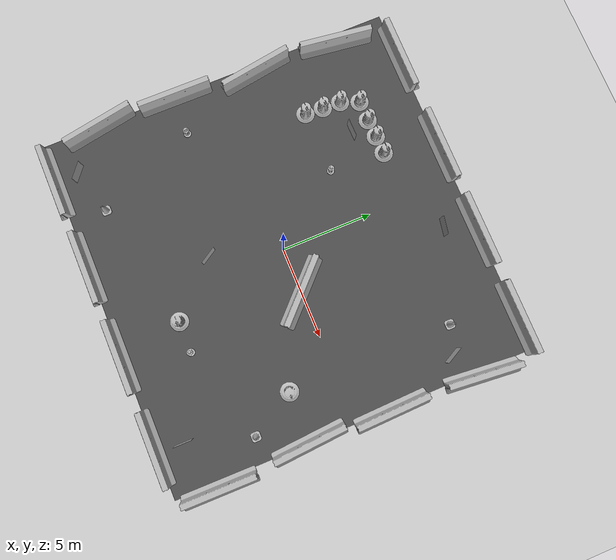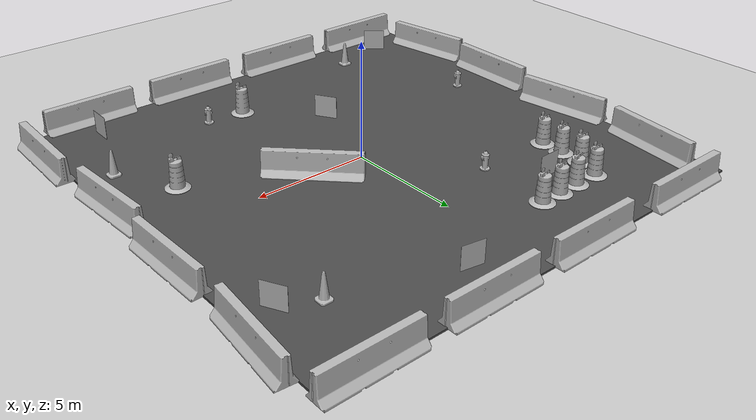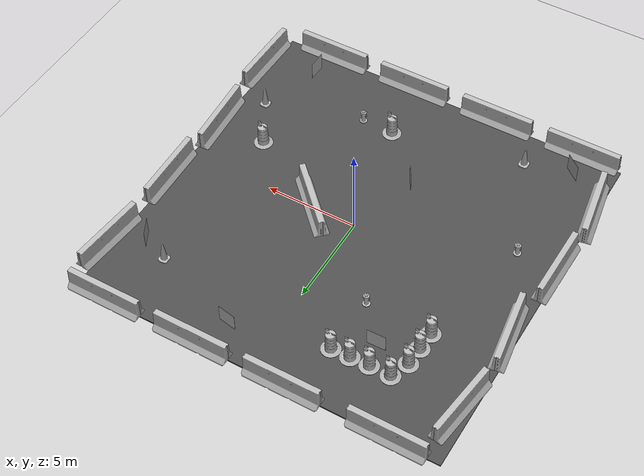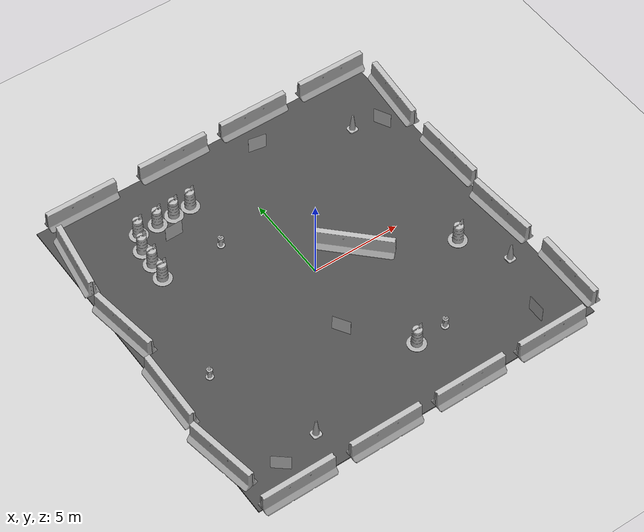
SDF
<sdf version="1.6">
 <world name="default">
  <light name="sun" type="directional">
   <pose>0 0 10 0 -0 0</pose>
   <diffuse>0.8 0.8 0.8 1</diffuse>
   <specular>0.2 0.2 0.2 1</specular>
   <attenuation>
    <range>1000</range>
    <constant>0.9</constant>
    <linear>0.01</linear>
    <quadratic>0.001</quadratic>
   </attenuation>
   <direction>-0.5 0.1 -0.9</direction>
  </light>
  <model name="ground_plane">
   <static>1</static>
   <link name="link">
    <collision name="collision">
     <geometry><plane><normal>0 0 1</normal><size>100 100</size></plane></geometry>
     <surface><friction><ode><mu>100</mu><mu2>50</mu2></ode></friction></surface>
    </collision>
    <visual name="visual">
     <cast_shadows>0</cast_shadows>
     <geometry><plane><normal>0 0 1</normal><size>100 100</size></plane></geometry>
     <material>
      <script><uri>file://media/materials/scripts/gazebo.material</uri><name>Gazebo/Grey</name></script>
     </material>
    </visual>
    <velocity_decay><linear>0</linear><angular>0</angular></velocity_decay>
   </link>
  </model>
  <physics name="default_physics" default="0" type="ode">
   <max_step_size>0.01</max_step_size>
   <real_time_factor>1</real_time_factor>
   <real_time_update_rate>100</real_time_update_rate>
  </physics>
  <scene><ambient>0.4 0.4 0.4 1</ambient><background>0.7 0.7 0.7 1</background><shadows>1</shadows></scene>
  <model name="jersey_barrier">
   <static>1</static>
   <link name="link">
    <visual name="visual">
     <geometry><mesh><uri>model://jersey_barrier/meshes/jersey_barrier.dae</uri></mesh></geometry>
    </visual>
    <collision name="upright">
     <pose>0 0 0.5715 0 -0 0</pose>
     <geometry><box><size>4.06542 0.3063 1.143</size></box></geometry>
    </collision>
    <collision name="base">
     <pose>0 0 0.032258 0 -0 0</pose>
     <geometry><box><size>4.06542 0.8107 0.064516</size></box></geometry>
    </collision>
    <collision name="base2">
     <pose>0 0 0.1 0 -0 0</pose>
     <geometry><box><size>4.06542 0.65 0.1</size></box></geometry>
    </collision>
    <collision name="base3">
     <pose>0 0 0.2 0 -0 0</pose>
     <geometry><box><size>4.06542 0.5 0.1</size></box></geometry>
    </collision>
    <collision name="left-angle">
     <pose>0 -0.224 0.2401 0.9 -0 0</pose>
     <geometry><box><size>4.06542 0.5 0.064516</size></box></geometry>
    </collision>
    <collision name="right-angle">
     <pose>0 0.224 0.2401 -0.9 0 0</pose>
     <geometry><box><size>4.06542 0.5 0.064516</size></box></geometry>
    </collision>
    <velocity_decay><linear>0</linear><angular>0</angular></velocity_decay>
   </link>
   <pose>-8 -10 0 0 -0 0</pose>
  </model>
  <model name="jersey_barrier_0">
   <static>1</static>
   <link name="link">
    <visual name="visual">
     <geometry><mesh><uri>model://jersey_barrier/meshes/jersey_barrier.dae</uri></mesh></geometry>
    </visual>
    <collision name="upright">
     <pose>0 0 0.5715 0 -0 0</pose>
     <geometry><box><size>4.06542 0.3063 1.143</size></box></geometry>
    </collision>
    <collision name="base">
     <pose>0 0 0.032258 0 -0 0</pose>
     <geometry><box><size>4.06542 0.8107 0.064516</size></box></geometry>
    </collision>
    <collision name="base2">
     <pose>0 0 0.1 0 -0 0</pose>
     <geometry><box><size>4.06542 0.65 0.1</size></box></geometry>
    </collision>
    <collision name="base3">
     <pose>0 0 0.2 0 -0 0</pose>
     <geometry><box><size>4.06542 0.5 0.1</size></box></geometry>
    </collision>
    <collision name="left-angle">
     <pose>0 -0.224 0.2401 0.9 -0 0</pose>
     <geometry><box><size>4.06542 0.5 0.064516</size></box></geometry>
    </collision>
    <collision name="right-angle">
     <pose>0 0.224 0.2401 -0.9 0 0</pose>
     <geometry><box><size>4.06542 0.5 0.064516</size></box></geometry>
    </collision>
    <velocity_decay><linear>0</linear><angular>0</angular></velocity_decay>
   </link>
   <pose>-3 -10 0 0 -0 0</pose>
  </model>
  <model name="jersey_barrier_1">
   <static>1</static>
   <link name="link">
    <visual name="visual">
     <geometry><mesh><uri>model://jersey_barrier/meshes/jersey_barrier.dae</uri></mesh></geometry>
    </visual>
    <collision name="upright">
     <pose>0 0 0.5715 0 -0 0</pose>
     <geometry><box><size>4.06542 0.3063 1.143</size></box></geometry>
    </collision>
    <collision name="base">
     <pose>0 0 0.032258 0 -0 0</pose>
     <geometry><box><size>4.06542 0.8107 0.064516</size></box></geometry>
    </collision>
    <collision name="base2">
     <pose>0 0 0.1 0 -0 0</pose>
     <geometry><box><size>4.06542 0.65 0.1</size></box></geometry>
    </collision>
    <collision name="base3">
     <pose>0 0 0.2 0 -0 0</pose>
     <geometry><box><size>4.06542 0.5 0.1</size></box></geometry>
    </collision>
    <collision name="left-angle">
     <pose>0 -0.224 0.2401 0.9 -0 0</pose>
     <geometry><box><size>4.06542 0.5 0.064516</size></box></geometry>
    </collision>
    <collision name="right-angle">
     <pose>0 0.224 0.2401 -0.9 0 0</pose>
     <geometry><box><size>4.06542 0.5 0.064516</size></box></geometry>
    </collision>
    <velocity_decay><linear>0</linear><angular>0</angular></velocity_decay>
   </link>
   <pose>2 -10 0 0 -0 0</pose>
  </model>
  <model name="jersey_barrier_2">
   <static>1</static>
   <link name="link">
    <visual name="visual">
     <geometry><mesh><uri>model://jersey_barrier/meshes/jersey_barrier.dae</uri></mesh></geometry>
    </visual>
    <collision name="upright">
     <pose>0 0 0.5715 0 -0 0</pose>
     <geometry><box><size>4.06542 0.3063 1.143</size></box></geometry>
    </collision>
    <collision name="base">
     <pose>0 0 0.032258 0 -0 0</pose>
     <geometry><box><size>4.06542 0.8107 0.064516</size></box></geometry>
    </collision>
    <collision name="base2">
     <pose>0 0 0.1 0 -0 0</pose>
     <geometry><box><size>4.06542 0.65 0.1</size></box></geometry>
    </collision>
    <collision name="base3">
     <pose>0 0 0.2 0 -0 0</pose>
     <geometry><box><size>4.06542 0.5 0.1</size></box></geometry>
    </collision>
    <collision name="left-angle">
     <pose>0 -0.224 0.2401 0.9 -0 0</pose>
     <geometry><box><size>4.06542 0.5 0.064516</size></box></geometry>
    </collision>
    <collision name="right-angle">
     <pose>0 0.224 0.2401 -0.9 0 0</pose>
     <geometry><box><size>4.06542 0.5 0.064516</size></box></geometry>
    </collision>
    <velocity_decay><linear>0</linear><angular>0</angular></velocity_decay>
   </link>
   <pose>7 -10 0 0 -0 0</pose>
  </model>
  <model name="jersey_barrier_3">
   <static>1</static>
   <link name="link">
    <visual name="visual">
     <geometry><mesh><uri>model://jersey_barrier/meshes/jersey_barrier.dae</uri></mesh></geometry>
    </visual>
    <collision name="upright">
     <pose>0 0 0.5715 0 -0 0</pose>
     <geometry><box><size>4.06542 0.3063 1.143</size></box></geometry>
    </collision>
    <collision name="base">
     <pose>0 0 0.032258 0 -0 0</pose>
     <geometry><box><size>4.06542 0.8107 0.064516</size></box></geometry>
    </collision>
    <collision name="base2">
     <pose>0 0 0.1 0 -0 0</pose>
     <geometry><box><size>4.06542 0.65 0.1</size></box></geometry>
    </collision>
    <collision name="base3">
     <pose>0 0 0.2 0 -0 0</pose>
     <geometry><box><size>4.06542 0.5 0.1</size></box></geometry>
    </collision>
    <collision name="left-angle">
     <pose>0 -0.224 0.2401 0.9 -0 0</pose>
     <geometry><box><size>4.06542 0.5 0.064516</size></box></geometry>
    </collision>
    <collision name="right-angle">
     <pose>0 0.224 0.2401 -0.9 0 0</pose>
     <geometry><box><size>4.06542 0.5 0.064516</size></box></geometry>
    </collision>
    <velocity_decay><linear>0</linear><angular>0</angular></velocity_decay>
   </link>
   <pose>-7.50675 10 0 0 -0 0</pose>
  </model>
  <model name="jersey_barrier_4">
   <static>1</static>
   <link name="link">
    <visual name="visual">
     <geometry><mesh><uri>model://jersey_barrier/meshes/jersey_barrier.dae</uri></mesh></geometry>
    </visual>
    <collision name="upright">
     <pose>0 0 0.5715 0 -0 0</pose>
     <geometry><box><size>4.06542 0.3063 1.143</size></box></geometry>
    </collision>
    <collision name="base">
     <pose>0 0 0.032258 0 -0 0</pose>
     <geometry><box><size>4.06542 0.8107 0.064516</size></box></geometry>
    </collision>
    <collision name="base2">
     <pose>0 0 0.1 0 -0 0</pose>
     <geometry><box><size>4.06542 0.65 0.1</size></box></geometry>
    </collision>
    <collision name="base3">
     <pose>0 0 0.2 0 -0 0</pose>
     <geometry><box><size>4.06542 0.5 0.1</size></box></geometry>
    </collision>
    <collision name="left-angle">
     <pose>0 -0.224 0.2401 0.9 -0 0</pose>
     <geometry><box><size>4.06542 0.5 0.064516</size></box></geometry>
    </collision>
    <collision name="right-angle">
     <pose>0 0.224 0.2401 -0.9 0 0</pose>
     <geometry><box><size>4.06542 0.5 0.064516</size></box></geometry>
    </collision>
    <velocity_decay><linear>0</linear><angular>0</angular></velocity_decay>
   </link>
   <pose>-2 10 0 0 -0 0</pose>
  </model>
  <model name="jersey_barrier_5">
   <static>1</static>
   <link name="link">
    <visual name="visual">
     <geometry><mesh><uri>model://jersey_barrier/meshes/jersey_barrier.dae</uri></mesh></geometry>
    </visual>
    <collision name="upright">
     <pose>0 0 0.5715 0 -0 0</pose>
     <geometry><box><size>4.06542 0.3063 1.143</size></box></geometry>
    </collision>
    <collision name="base">
     <pose>0 0 0.032258 0 -0 0</pose>
     <geometry><box><size>4.06542 0.8107 0.064516</size></box></geometry>
    </collision>
    <collision name="base2">
     <pose>0 0 0.1 0 -0 0</pose>
     <geometry><box><size>4.06542 0.65 0.1</size></box></geometry>
    </collision>
    <collision name="base3">
     <pose>0 0 0.2 0 -0 0</pose>
     <geometry><box><size>4.06542 0.5 0.1</size></box></geometry>
    </collision>
    <collision name="left-angle">
     <pose>0 -0.224 0.2401 0.9 -0 0</pose>
     <geometry><box><size>4.06542 0.5 0.064516</size></box></geometry>
    </collision>
    <collision name="right-angle">
     <pose>0 0.224 0.2401 -0.9 0 0</pose>
     <geometry><box><size>4.06542 0.5 0.064516</size></box></geometry>
    </collision>
    <velocity_decay><linear>0</linear><angular>0</angular></velocity_decay>
   </link>
   <pose>3 10 0 0 -0 0</pose>
  </model>
  <model name="jersey_barrier_6">
   <static>1</static>
   <link name="link">
    <visual name="visual">
     <geometry><mesh><uri>model://jersey_barrier/meshes/jersey_barrier.dae</uri></mesh></geometry>
    </visual>
    <collision name="upright">
     <pose>0 0 0.5715 0 -0 0</pose>
     <geometry><box><size>4.06542 0.3063 1.143</size></box></geometry>
    </collision>
    <collision name="base">
     <pose>0 0 0.032258 0 -0 0</pose>
     <geometry><box><size>4.06542 0.8107 0.064516</size></box></geometry>
    </collision>
    <collision name="base2">
     <pose>0 0 0.1 0 -0 0</pose>
     <geometry><box><size>4.06542 0.65 0.1</size></box></geometry>
    </collision>
    <collision name="base3">
     <pose>0 0 0.2 0 -0 0</pose>
     <geometry><box><size>4.06542 0.5 0.1</size></box></geometry>
    </collision>
    <collision name="left-angle">
     <pose>0 -0.224 0.2401 0.9 -0 0</pose>
     <geometry><box><size>4.06542 0.5 0.064516</size></box></geometry>
    </collision>
    <collision name="right-angle">
     <pose>0 0.224 0.2401 -0.9 0 0</pose>
     <geometry><box><size>4.06542 0.5 0.064516</size></box></geometry>
    </collision>
    <velocity_decay><linear>0</linear><angular>0</angular></velocity_decay>
   </link>
   <pose>8 10 0 0 -0 0</pose>
  </model>
  <model name="jersey_barrier_7">
   <static>1</static>
   <link name="link">
    <visual name="visual">
     <geometry><mesh><uri>model://jersey_barrier/meshes/jersey_barrier.dae</uri></mesh></geometry>
    </visual>
    <collision name="upright">
     <pose>0 0 0.5715 0 -0 0</pose>
     <geometry><box><size>4.06542 0.3063 1.143</size></box></geometry>
    </collision>
    <collision name="base">
     <pose>0 0 0.032258 0 -0 0</pose>
     <geometry><box><size>4.06542 0.8107 0.064516</size></box></geometry>
    </collision>
    <collision name="base2">
     <pose>0 0 0.1 0 -0 0</pose>
     <geometry><box><size>4.06542 0.65 0.1</size></box></geometry>
    </collision>
    <collision name="base3">
     <pose>0 0 0.2 0 -0 0</pose>
     <geometry><box><size>4.06542 0.5 0.1</size></box></geometry>
    </collision>
    <collision name="left-angle">
     <pose>0 -0.224 0.2401 0.9 -0 0</pose>
     <geometry><box><size>4.06542 0.5 0.064516</size></box></geometry>
    </collision>
    <collision name="right-angle">
     <pose>0 0.224 0.2401 -0.9 0 0</pose>
     <geometry><box><size>4.06542 0.5 0.064516</size></box></geometry>
    </collision>
    <velocity_decay><linear>0</linear><angular>0</angular></velocity_decay>
   </link>
   <pose>9.74902 -2.57759 0 0 -0 1.64</pose>
  </model>
  <model name="jersey_barrier_8">
   <static>1</static>
   <link name="link">
    <visual name="visual">
     <geometry><mesh><uri>model://jersey_barrier/meshes/jersey_barrier.dae</uri></mesh></geometry>
    </visual>
    <collision name="upright">
     <pose>0 0 0.5715 0 -0 0</pose>
     <geometry><box><size>4.06542 0.3063 1.143</size></box></geometry>
    </collision>
    <collision name="base">
     <pose>0 0 0.032258 0 -0 0</pose>
     <geometry><box><size>4.06542 0.8107 0.064516</size></box></geometry>
    </collision>
    <collision name="base2">
     <pose>0 0 0.1 0 -0 0</pose>
     <geometry><box><size>4.06542 0.65 0.1</size></box></geometry>
    </collision>
    <collision name="base3">
     <pose>0 0 0.2 0 -0 0</pose>
     <geometry><box><size>4.06542 0.5 0.1</size></box></geometry>
    </collision>
    <collision name="left-angle">
     <pose>0 -0.224 0.2401 0.9 -0 0</pose>
     <geometry><box><size>4.06542 0.5 0.064516</size></box></geometry>
    </collision>
    <collision name="right-angle">
     <pose>0 0.224 0.2401 -0.9 0 0</pose>
     <geometry><box><size>4.06542 0.5 0.064516</size></box></geometry>
    </collision>
    <velocity_decay><linear>0</linear><angular>0</angular></velocity_decay>
   </link>
   <pose>9.88657 1.94086 0 0 -0 1.6</pose>
  </model>
  <model name="jersey_barrier_9">
   <static>1</static>
   <link name="link">
    <visual name="visual">
     <geometry><mesh><uri>model://jersey_barrier/meshes/jersey_barrier.dae</uri></mesh></geometry>
    </visual>
    <collision name="upright">
     <pose>0 0 0.5715 0 -0 0</pose>
     <geometry><box><size>4.06542 0.3063 1.143</size></box></geometry>
    </collision>
    <collision name="base">
     <pose>0 0 0.032258 0 -0 0</pose>
     <geometry><box><size>4.06542 0.8107 0.064516</size></box></geometry>
    </collision>
    <collision name="base2">
     <pose>0 0 0.1 0 -0 0</pose>
     <geometry><box><size>4.06542 0.65 0.1</size></box></geometry>
    </collision>
    <collision name="base3">
     <pose>0 0 0.2 0 -0 0</pose>
     <geometry><box><size>4.06542 0.5 0.1</size></box></geometry>
    </collision>
    <collision name="left-angle">
     <pose>0 -0.224 0.2401 0.9 -0 0</pose>
     <geometry><box><size>4.06542 0.5 0.064516</size></box></geometry>
    </collision>
    <collision name="right-angle">
     <pose>0 0.224 0.2401 -0.9 0 0</pose>
     <geometry><box><size>4.06542 0.5 0.064516</size></box></geometry>
    </collision>
    <velocity_decay><linear>0</linear><angular>0</angular></velocity_decay>
   </link>
   <pose>-10.0607 -6.69856 0 0 0 -1.4</pose>
  </model>
  <model name="jersey_barrier_10">
   <static>1</static>
   <link name="link">
    <visual name="visual">
     <geometry><mesh><uri>model://jersey_barrier/meshes/jersey_barrier.dae</uri></mesh></geometry>
    </visual>
    <collision name="upright">
     <pose>0 0 0.5715 0 -0 0</pose>
     <geometry><box><size>4.06542 0.3063 1.143</size></box></geometry>
    </collision>
    <collision name="base">
     <pose>0 0 0.032258 0 -0 0</pose>
     <geometry><box><size>4.06542 0.8107 0.064516</size></box></geometry>
    </collision>
    <collision name="base2">
     <pose>0 0 0.1 0 -0 0</pose>
     <geometry><box><size>4.06542 0.65 0.1</size></box></geometry>
    </collision>
    <collision name="base3">
     <pose>0 0 0.2 0 -0 0</pose>
     <geometry><box><size>4.06542 0.5 0.1</size></box></geometry>
    </collision>
    <collision name="left-angle">
     <pose>0 -0.224 0.2401 0.9 -0 0</pose>
     <geometry><box><size>4.06542 0.5 0.064516</size></box></geometry>
    </collision>
    <collision name="right-angle">
     <pose>0 0.224 0.2401 -0.9 0 0</pose>
     <geometry><box><size>4.06542 0.5 0.064516</size></box></geometry>
    </collision>
    <velocity_decay><linear>0</linear><angular>0</angular></velocity_decay>
   </link>
   <pose>-10.0774 -2.27159 0 0 -0 1.56</pose>
  </model>
  <model name="jersey_barrier_11">
   <static>1</static>
   <link name="link">
    <visual name="visual">
     <geometry><mesh><uri>model://jersey_barrier/meshes/jersey_barrier.dae</uri></mesh></geometry>
    </visual>
    <collision name="upright">
     <pose>0 0 0.5715 0 -0 0</pose>
     <geometry><box><size>4.06542 0.3063 1.143</size></box></geometry>
    </collision>
    <collision name="base">
     <pose>0 0 0.032258 0 -0 0</pose>
     <geometry><box><size>4.06542 0.8107 0.064516</size></box></geometry>
    </collision>
    <collision name="base2">
     <pose>0 0 0.1 0 -0 0</pose>
     <geometry><box><size>4.06542 0.65 0.1</size></box></geometry>
    </collision>
    <collision name="base3">
     <pose>0 0 0.2 0 -0 0</pose>
     <geometry><box><size>4.06542 0.5 0.1</size></box></geometry>
    </collision>
    <collision name="left-angle">
     <pose>0 -0.224 0.2401 0.9 -0 0</pose>
     <geometry><box><size>4.06542 0.5 0.064516</size></box></geometry>
    </collision>
    <collision name="right-angle">
     <pose>0 0.224 0.2401 -0.9 0 0</pose>
     <geometry><box><size>4.06542 0.5 0.064516</size></box></geometry>
    </collision>
    <velocity_decay><linear>0</linear><angular>0</angular></velocity_decay>
   </link>
   <pose>-9.77013 2.34791 0 0 -0 1.72</pose>
  </model>
  <model name="jersey_barrier_12">
   <static>1</static>
   <link name="link">
    <visual name="visual">
     <geometry><mesh><uri>model://jersey_barrier/meshes/jersey_barrier.dae</uri></mesh></geometry>
    </visual>
    <collision name="upright">
     <pose>0 0 0.5715 0 -0 0</pose>
     <geometry><box><size>4.06542 0.3063 1.143</size></box></geometry>
    </collision>
    <collision name="base">
     <pose>0 0 0.032258 0 -0 0</pose>
     <geometry><box><size>4.06542 0.8107 0.064516</size></box></geometry>
    </collision>
    <collision name="base2">
     <pose>0 0 0.1 0 -0 0</pose>
     <geometry><box><size>4.06542 0.65 0.1</size></box></geometry>
    </collision>
    <collision name="base3">
     <pose>0 0 0.2 0 -0 0</pose>
     <geometry><box><size>4.06542 0.5 0.1</size></box></geometry>
    </collision>
    <collision name="left-angle">
     <pose>0 -0.224 0.2401 0.9 -0 0</pose>
     <geometry><box><size>4.06542 0.5 0.064516</size></box></geometry>
    </collision>
    <collision name="right-angle">
     <pose>0 0.224 0.2401 -0.9 0 0</pose>
     <geometry><box><size>4.06542 0.5 0.064516</size></box></geometry>
    </collision>
    <velocity_decay><linear>0</linear><angular>0</angular></velocity_decay>
   </link>
   <pose>10.0879 -7.62159 0 0 -0 1.56</pose>
  </model>
  <model name="jersey_barrier_13">
   <static>1</static>
   <link name="link">
    <visual name="visual">
     <geometry><mesh><uri>model://jersey_barrier/meshes/jersey_barrier.dae</uri></mesh></geometry>
    </visual>
    <collision name="upright">
     <pose>0 0 0.5715 0 -0 0</pose>
     <geometry><box><size>4.06542 0.3063 1.143</size></box></geometry>
    </collision>
    <collision name="base">
     <pose>0 0 0.032258 0 -0 0</pose>
     <geometry><box><size>4.06542 0.8107 0.064516</size></box></geometry>
    </collision>
    <collision name="base2">
     <pose>0 0 0.1 0 -0 0</pose>
     <geometry><box><size>4.06542 0.65 0.1</size></box></geometry>
    </collision>
    <collision name="base3">
     <pose>0 0 0.2 0 -0 0</pose>
     <geometry><box><size>4.06542 0.5 0.1</size></box></geometry>
    </collision>
    <collision name="left-angle">
     <pose>0 -0.224 0.2401 0.9 -0 0</pose>
     <geometry><box><size>4.06542 0.5 0.064516</size></box></geometry>
    </collision>
    <collision name="right-angle">
     <pose>0 0.224 0.2401 -0.9 0 0</pose>
     <geometry><box><size>4.06542 0.5 0.064516</size></box></geometry>
    </collision>
    <velocity_decay><linear>0</linear><angular>0</angular></velocity_decay>
   </link>
   <pose>10 7 0 0 -0 1.48</pose>
  </model>
  <model name="jersey_barrier_14">
   <static>1</static>
   <link name="link">
    <visual name="visual">
     <geometry><mesh><uri>model://jersey_barrier/meshes/jersey_barrier.dae</uri></mesh></geometry>
    </visual>
    <collision name="upright">
     <pose>0 0 0.5715 0 -0 0</pose>
     <geometry><box><size>4.06542 0.3063 1.143</size></box></geometry>
    </collision>
    <collision name="base">
     <pose>0 0 0.032258 0 -0 0</pose>
     <geometry><box><size>4.06542 0.8107 0.064516</size></box></geometry>
    </collision>
    <collision name="base2">
     <pose>0 0 0.1 0 -0 0</pose>
     <geometry><box><size>4.06542 0.65 0.1</size></box></geometry>
    </collision>
    <collision name="base3">
     <pose>0 0 0.2 0 -0 0</pose>
     <geometry><box><size>4.06542 0.5 0.1</size></box></geometry>
    </collision>
    <collision name="left-angle">
     <pose>0 -0.224 0.2401 0.9 -0 0</pose>
     <geometry><box><size>4.06542 0.5 0.064516</size></box></geometry>
    </collision>
    <collision name="right-angle">
     <pose>0 0.224 0.2401 -0.9 0 0</pose>
     <geometry><box><size>4.06542 0.5 0.064516</size></box></geometry>
    </collision>
    <velocity_decay><linear>0</linear><angular>0</angular></velocity_decay>
   </link>
   <pose>-9.64482 7.05946 0 0 -0 1.44</pose>
  </model>
  <model name="fire_hydrant">
   <static>1</static>
   <link name="link">
    <collision name="collision">
     <geometry><mesh><uri>model://fire_hydrant/meshes/fire_hydrant.dae</uri></mesh></geometry>
    </collision>
    <visual name="visual">
     <geometry><mesh><uri>model://fire_hydrant/meshes/fire_hydrant.dae</uri></mesh></geometry>
    </visual>
    <velocity_decay><linear>0</linear><angular>0</angular></velocity_decay>
   </link>
   <pose>3.18024 -6.51118 0 0 -0 0</pose>
  </model>
  <model name="fire_hydrant_0">
   <static>1</static>
   <link name="link">
    <collision name="collision">
     <geometry><mesh><uri>model://fire_hydrant/meshes/fire_hydrant.dae</uri></mesh></geometry>
    </collision>
    <visual name="visual">
     <geometry><mesh><uri>model://fire_hydrant/meshes/fire_hydrant.dae</uri></mesh></geometry>
    </visual>
    <velocity_decay><linear>0</linear><angular>0</angular></velocity_decay>
   </link>
   <pose>-3 4 0 0 -0 0</pose>
  </model>
  <model name="fire_hydrant_1">
   <static>1</static>
   <link name="link">
    <collision name="collision">
     <geometry><mesh><uri>model://fire_hydrant/meshes/fire_hydrant.dae</uri></mesh></geometry>
    </collision>
    <visual name="visual">
     <geometry><mesh><uri>model://fire_hydrant/meshes/fire_hydrant.dae</uri></mesh></geometry>
    </visual>
    <velocity_decay><linear>0</linear><angular>0</angular></velocity_decay>
   </link>
   <pose>-7.90686 -2.41363 0 0 -0 0</pose>
  </model>
  <model name="jersey_barrier_15">
   <static>1</static>
   <link name="link">
    <visual name="visual">
     <geometry><mesh><uri>model://jersey_barrier/meshes/jersey_barrier.dae</uri></mesh></geometry>
    </visual>
    <collision name="upright">
     <pose>0 0 0.5715 0 -0 0</pose>
     <geometry><box><size>4.06542 0.3063 1.143</size></box></geometry>
    </collision>
    <collision name="base">
     <pose>0 0 0.032258 0 -0 0</pose>
     <geometry><box><size>4.06542 0.8107 0.064516</size></box></geometry>
    </collision>
    <collision name="base2">
     <pose>0 0 0.1 0 -0 0</pose>
     <geometry><box><size>4.06542 0.65 0.1</size></box></geometry>
    </collision>
    <collision name="base3">
     <pose>0 0 0.2 0 -0 0</pose>
     <geometry><box><size>4.06542 0.5 0.1</size></box></geometry>
    </collision>
    <collision name="left-angle">
     <pose>0 -0.224 0.2401 0.9 -0 0</pose>
     <geometry><box><size>4.06542 0.5 0.064516</size></box></geometry>
    </collision>
    <collision name="right-angle">
     <pose>0 0.224 0.2401 -0.9 0 0</pose>
     <geometry><box><size>4.06542 0.5 0.064516</size></box></geometry>
    </collision>
    <velocity_decay><linear>0</linear><angular>0</angular></velocity_decay>
   </link>
   <pose>2.45495 0 0 0 -0 2.36</pose>
  </model>
  <model name="Construction Cone">
   <link name="link">
    <collision name="collision">
     <geometry>
      <mesh><scale>10 10 10</scale><uri>model://construction_cone/meshes/construction_cone.dae</uri></mesh>
     </geometry>
    </collision>
    <visual name="visual">
     <geometry>
      <mesh><scale>10 10 10</scale><uri>model://construction_cone/meshes/construction_cone.dae</uri></mesh>
     </geometry>
    </visual>
    <velocity_decay><linear>0</linear><angular>0</angular></velocity_decay>
    <inertial>
     <inertia><ixx>1</ixx><ixy>0</ixy><ixz>0</ixz><iyy>1</iyy><iyz>0</iyz><izz>1</izz></inertia>
     <mass>1</mass>
    </inertial>
   </link>
   <pose>-5.59121 -8.00001 0.05 0 -0 1.1e-05</pose>
   <static>0</static>
  </model>
  <model name="Construction Barrel">
   <link name="link">
    <inertial>
     <pose>0 0 0.4 0 -0 0</pose>
     <mass>500</mass>
     <inertia><ixx>51.2096</ixx><iyy>51.2096</iyy><izz>25</izz><ixy>0</ixy><ixz>0</ixz><iyz>0</iyz></inertia>
    </inertial>
    <collision name="collision">
     <geometry><mesh><uri>model://construction_barrel/meshes/construction_barrel.dae</uri></mesh></geometry>
    </collision>
    <visual name="visual">
     <geometry><mesh><uri>model://construction_barrel/meshes/construction_barrel.dae</uri></mesh></geometry>
    </visual>
    <velocity_decay><linear>0</linear><angular>0</angular></velocity_decay>
   </link>
   <pose>7.00017 -2.54602 0.049878 -0.00024 -0.000421 -5.8e-05</pose>
   <static>0</static>
  </model>
  <model name="Construction Cone_0">
   <link name="link">
    <collision name="collision">
     <geometry>
      <mesh><scale>10 10 10</scale><uri>model://construction_cone/meshes/construction_cone.dae</uri></mesh>
     </geometry>
    </collision>
    <visual name="visual">
     <geometry>
      <mesh><scale>10 10 10</scale><uri>model://construction_cone/meshes/construction_cone.dae</uri></mesh>
     </geometry>
    </visual>
    <velocity_decay><linear>0</linear><angular>0</angular></velocity_decay>
    <inertial>
     <inertia><ixx>1</ixx><ixy>0</ixy><ixz>0</ixz><iyy>1</iyy><iyz>0</iyz><izz>1</izz></inertia>
     <mass>1</mass>
    </inertial>
   </link>
   <pose>6.99685 6.55732 0.04902 1e-06 0 -0.007003</pose>
   <static>0</static>
  </model>
  <model name="Construction Barrel_0">
   <link name="link">
    <inertial>
     <pose>0 0 0.4 0 -0 0</pose>
     <mass>500</mass>
     <inertia><ixx>51.2096</ixx><iyy>51.2096</iyy><izz>25</izz><ixy>0</ixy><ixz>0</ixz><iyz>0</iyz></inertia>
    </inertial>
    <collision name="collision">
     <geometry><mesh><uri>model://construction_barrel/meshes/construction_barrel.dae</uri></mesh></geometry>
    </collision>
    <visual name="visual">
     <geometry><mesh><uri>model://construction_barrel/meshes/construction_barrel.dae</uri></mesh></geometry>
    </visual>
    <velocity_decay><linear>0</linear><angular>0</angular></velocity_decay>
   </link>
   <pose>1.45189 -6.51095 0.049892 0.000448 -1.5e-05 -0.000422</pose>
   <static>0</static>
  </model>
  <model name="asphalt_plane">
   <static>1</static>
   <link name="link">
    <collision name="collision"><geometry><box><size>20 20 0.1</size></box></geometry></collision>
    <visual name="visual">
     <cast_shadows>0</cast_shadows>
     <geometry><box><size>20 20 0.1</size></box></geometry>
     <material>
      <script>
       <uri>model://asphalt_plane/materials/scripts</uri>
       <uri>model://asphalt_plane/materials/textures</uri>
       <name>vrc/asphalt</name>
      </script>
     </material>
    </visual>
    <velocity_decay><linear>0</linear><angular>0</angular></velocity_decay>
   </link>
   <pose>-0.207598 0.019864 0 0 -0 0</pose>
  </model>
  <model name="Construction Barrel_1">
   <link name="link">
    <inertial>
     <pose>0 0 0.4 0 -0 0</pose>
     <mass>500</mass>
     <inertia><ixx>51.2096</ixx><iyy>51.2096</iyy><izz>25</izz><ixy>0</ixy><ixz>0</ixz><iyz>0</iyz></inertia>
    </inertial>
    <collision name="collision">
     <geometry><mesh><uri>model://construction_barrel/meshes/construction_barrel.dae</uri></mesh></geometry>
    </collision>
    <visual name="visual">
     <geometry><mesh><uri>model://construction_barrel/meshes/construction_barrel.dae</uri></mesh></geometry>
    </visual>
    <velocity_decay><linear>0</linear><angular>0</angular></velocity_decay>
   </link>
   <pose>-6.50328 3.98372 0.0499 -0.000195 -0.00041 -0.011679</pose>
   <static>0</static>
  </model>
  <model name="Construction Barrel_2">
   <link name="link">
    <inertial>
     <pose>0 0 0.4 0 -0 0</pose>
     <mass>500</mass>
     <inertia><ixx>51.2096</ixx><iyy>51.2096</iyy><izz>25</izz><ixy>0</ixy><ixz>0</ixz><iyz>0</iyz></inertia>
    </inertial>
    <collision name="collision">
     <geometry><mesh><uri>model://construction_barrel/meshes/construction_barrel.dae</uri></mesh></geometry>
    </collision>
    <visual name="visual">
     <geometry><mesh><uri>model://construction_barrel/meshes/construction_barrel.dae</uri></mesh></geometry>
    </visual>
    <velocity_decay><linear>0</linear><angular>0</angular></velocity_decay>
   </link>
   <pose>-6.45164 4.9972 0.049878 0.000436 0.000106 0.061464</pose>
   <static>0</static>
  </model>
  <model name="Construction Barrel_3">
   <link name="link">
    <inertial>
     <pose>0 0 0.4 0 -0 0</pose>
     <mass>500</mass>
     <inertia><ixx>51.2096</ixx><iyy>51.2096</iyy><izz>25</izz><ixy>0</ixy><ixz>0</ixz><iyz>0</iyz></inertia>
    </inertial>
    <collision name="collision">
     <geometry><mesh><uri>model://construction_barrel/meshes/construction_barrel.dae</uri></mesh></geometry>
    </collision>
    <visual name="visual">
     <geometry><mesh><uri>model://construction_barrel/meshes/construction_barrel.dae</uri></mesh></geometry>
    </visual>
    <velocity_decay><linear>0</linear><angular>0</angular></velocity_decay>
   </link>
   <pose>-6.40157 6.01153 0.049928 0.000333 5.6e-05 -0.120838</pose>
   <static>0</static>
  </model>
  <model name="Construction Barrel_4">
   <link name="link">
    <inertial>
     <pose>0 0 0.4 0 -0 0</pose>
     <mass>500</mass>
     <inertia><ixx>51.2096</ixx><iyy>51.2096</iyy><izz>25</izz><ixy>0</ixy><ixz>0</ixz><iyz>0</iyz></inertia>
    </inertial>
    <collision name="collision">
     <geometry><mesh><uri>model://construction_barrel/meshes/construction_barrel.dae</uri></mesh></geometry>
    </collision>
    <visual name="visual">
     <geometry><mesh><uri>model://construction_barrel/meshes/construction_barrel.dae</uri></mesh></geometry>
    </visual>
    <velocity_decay><linear>0</linear><angular>0</angular></velocity_decay>
   </link>
   <pose>-6.00573 7.00962 0.049896 -9.9e-05 -0.000417 -0.049369</pose>
   <static>0</static>
  </model>
  <model name="Construction Barrel_5">
   <link name="link">
    <inertial>
     <pose>0 0 0.4 0 -0 0</pose>
     <mass>500</mass>
     <inertia><ixx>51.2096</ixx><iyy>51.2096</iyy><izz>25</izz><ixy>0</ixy><ixz>0</ixz><iyz>0</iyz></inertia>
    </inertial>
    <collision name="collision">
     <geometry><mesh><uri>model://construction_barrel/meshes/construction_barrel.dae</uri></mesh></geometry>
    </collision>
    <visual name="visual">
     <geometry><mesh><uri>model://construction_barrel/meshes/construction_barrel.dae</uri></mesh></geometry>
    </visual>
    <velocity_decay><linear>0</linear><angular>0</angular></velocity_decay>
   </link>
   <pose>-4.87551 7.00819 0.049888 1e-06 -0.000441 0.146438</pose>
   <static>0</static>
  </model>
  <model name="Construction Barrel_6">
   <link name="link">
    <inertial>
     <pose>0 0 0.4 0 -0 0</pose>
     <mass>500</mass>
     <inertia><ixx>51.2096</ixx><iyy>51.2096</iyy><izz>25</izz><ixy>0</ixy><ixz>0</ixz><iyz>0</iyz></inertia>
    </inertial>
    <collision name="collision">
     <geometry><mesh><uri>model://construction_barrel/meshes/construction_barrel.dae</uri></mesh></geometry>
    </collision>
    <visual name="visual">
     <geometry><mesh><uri>model://construction_barrel/meshes/construction_barrel.dae</uri></mesh></geometry>
    </visual>
    <velocity_decay><linear>0</linear><angular>0</angular></velocity_decay>
   </link>
   <pose>-3.86031 7.0487 0.049894 -0.000208 -0.00039 0.031178</pose>
   <static>0</static>
  </model>
  <model name="Construction Barrel_7">
   <link name="link">
    <inertial>
     <pose>0 0 0.4 0 -0 0</pose>
     <mass>500</mass>
     <inertia><ixx>51.2096</ixx><iyy>51.2096</iyy><izz>25</izz><ixy>0</ixy><ixz>0</ixz><iyz>0</iyz></inertia>
    </inertial>
    <collision name="collision">
     <geometry><mesh><uri>model://construction_barrel/meshes/construction_barrel.dae</uri></mesh></geometry>
    </collision>
    <visual name="visual">
     <geometry><mesh><uri>model://construction_barrel/meshes/construction_barrel.dae</uri></mesh></geometry>
    </visual>
    <velocity_decay><linear>0</linear><angular>0</angular></velocity_decay>
   </link>
   <pose>-2.84339 7.07621 0.049898 0.00043 -1.9e-05 0.070097</pose>
   <static>0</static>
  </model>
  <model name="Construction Cone_1">
   <link name="link">
    <collision name="collision">
     <geometry>
      <mesh><scale>10 10 10</scale><uri>model://construction_cone/meshes/construction_cone.dae</uri></mesh>
     </geometry>
    </collision>
    <visual name="visual">
     <geometry>
      <mesh><scale>10 10 10</scale><uri>model://construction_cone/meshes/construction_cone.dae</uri></mesh>
     </geometry>
    </visual>
    <velocity_decay><linear>0</linear><angular>0</angular></velocity_decay>
    <inertial>
     <inertia><ixx>1</ixx><ixy>0</ixy><ixz>0</ixz><iyy>1</iyy><iyz>0</iyz><izz>1</izz></inertia>
     <mass>1</mass>
    </inertial>
   </link>
   <pose>8.42887 -5.00001 0.05 0 -0 1.1e-05</pose>
   <static>0</static>
  </model>
  <gravity>0 0 -9.8</gravity>
  <magnetic_field>6e-06 2.3e-05 -4.2e-05</magnetic_field>
  <atmosphere type="adiabatic"/>
  <audio><device>default</device></audio>
  <spherical_coordinates>
   <surface_model>EARTH_WGS84</surface_model>
   <latitude_deg>0</latitude_deg>
   <longitude_deg>0</longitude_deg>
   <elevation>0</elevation>
   <heading_deg>0</heading_deg>
  </spherical_coordinates>
  <model name="Apriltag36_11_00001">
   <link name="main">
    <visual name="main_Visual">
     <geometry><box><size>1 1 0.01</size></box></geometry>
     <material>
      <script>
       <uri>model://Apriltag36_11_00001/materials/scripts</uri>
       <uri>model://Apriltag36_11_00001/materials/textures</uri>
       <name>Apriltag36_11_00001</name>
      </script>
     </material>
    </visual>
   </link>
   <static>1</static>
   <pose>-8.02504 -8.61879 0.556205 -0.882995 1.56982 -1.5e-05</pose>
  </model>
  <model name="Apriltag36_11_00002">
   <link name="main">
    <visual name="main_Visual">
     <geometry><box><size>1 1 0.01</size></box></geometry>
     <material>
      <script>
       <uri>model://Apriltag36_11_00002/materials/scripts</uri>
       <uri>model://Apriltag36_11_00002/materials/textures</uri>
       <name>Apriltag36_11_00002</name>
      </script>
     </material>
    </visual>
   </link>
   <static>1</static>
   <pose>-4.59416 5.87654 0.544182 1.57041 -0.000282 0.01545</pose>
  </model>
  <model name="Apriltag36_11_00003">
   <link name="main">
    <visual name="main_Visual">
     <geometry><box><size>1 1 0.01</size></box></geometry>
     <material>
      <script>
       <uri>model://Apriltag36_11_00003/materials/scripts</uri>
       <uri>model://Apriltag36_11_00003/materials/textures</uri>
       <name>Apriltag36_11_00003</name>
      </script>
     </material>
    </visual>
   </link>
   <static>1</static>
   <pose>7.26846 -8.47612 0.554219 3.14159 -1.56689 3.14159</pose>
  </model>
  <model name="Apriltag36_11_00004">
   <link name="main">
    <visual name="main_Visual">
     <geometry><box><size>1 1 0.01</size></box></geometry>
     <material>
      <script>
       <uri>model://Apriltag36_11_00004/materials/scripts</uri>
       <uri>model://Apriltag36_11_00004/materials/textures</uri>
       <name>Apriltag36_11_00004</name>
      </script>
     </material>
    </visual>
   </link>
   <static>1</static>
   <pose>-1.1289 -3.80385 0.571004 -0.553464 1.56812 0</pose>
  </model>
  <model name="Apriltag36_11_00005">
   <link name="main">
    <visual name="main_Visual">
     <geometry><box><size>1 1 0.01</size></box></geometry>
     <material>
      <script>
       <uri>model://Apriltag36_11_00005/materials/scripts</uri>
       <uri>model://Apriltag36_11_00005/materials/textures</uri>
       <name>Apriltag36_11_00005</name>
      </script>
     </material>
    </visual>
   </link>
   <static>1</static>
   <pose>2.13548 8.2994 0.545762 1.56948 -0.000235 -0.177497</pose>
  </model>
  <model name="Apriltag36_11_00006">
   <link name="main">
    <visual name="main_Visual">
     <geometry><box><size>1 1 0.01</size></box></geometry>
     <material>
      <script>
       <uri>model://Apriltag36_11_00006/materials/scripts</uri>
       <uri>model://Apriltag36_11_00006/materials/textures</uri>
       <name>Apriltag36_11_00006</name>
      </script>
     </material>
    </visual>
   </link>
   <static>1</static>
   <pose>8.47179 5.93973 0.565878 0.484582 -1.56967 2.8e-05</pose>
  </model>
 </world>
</sdf>
